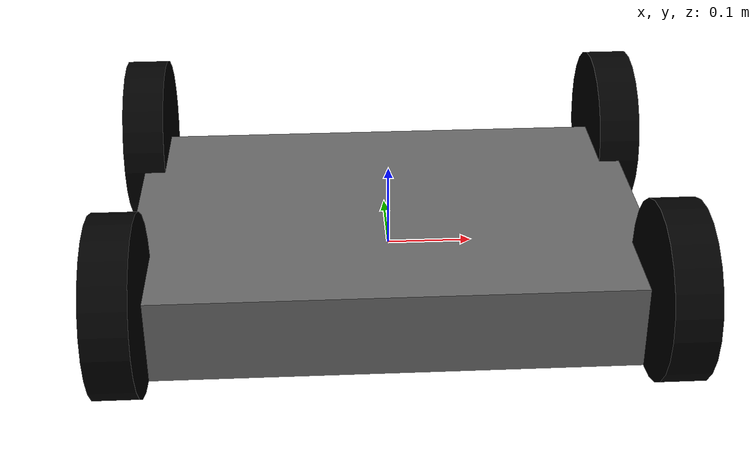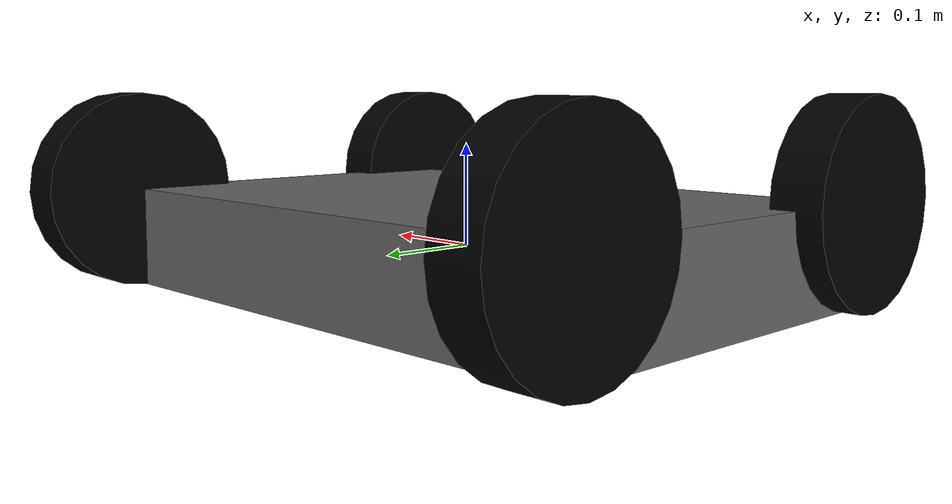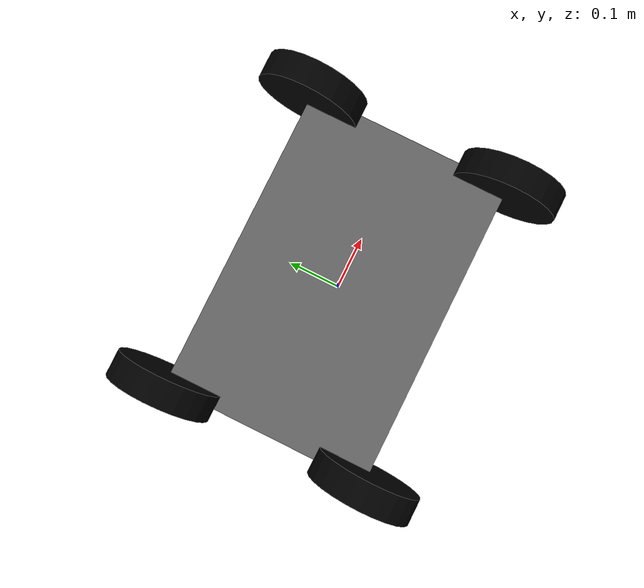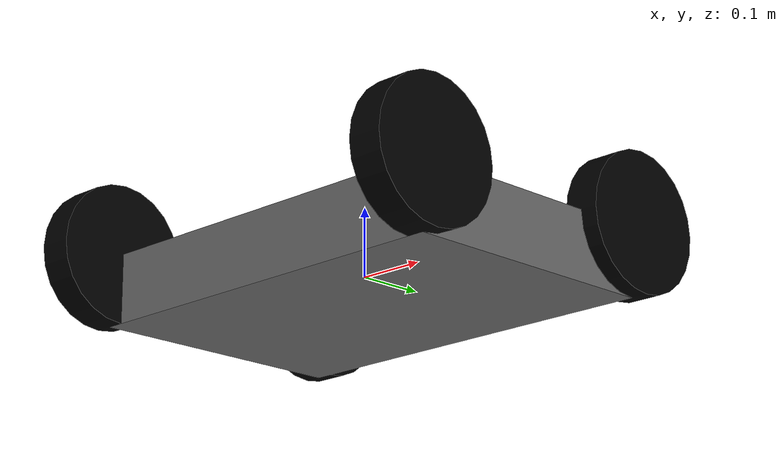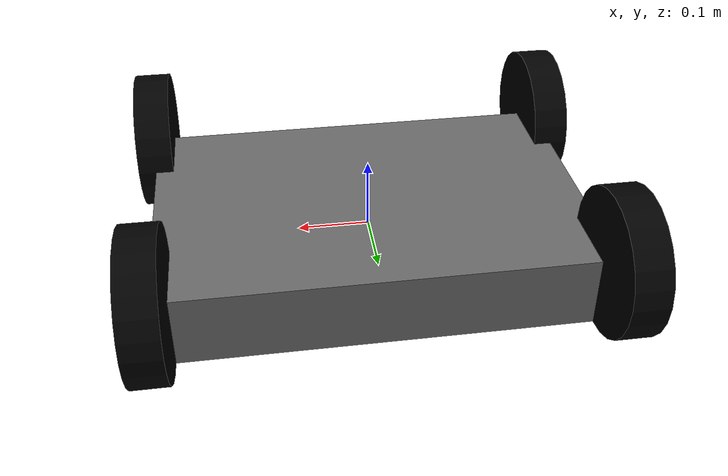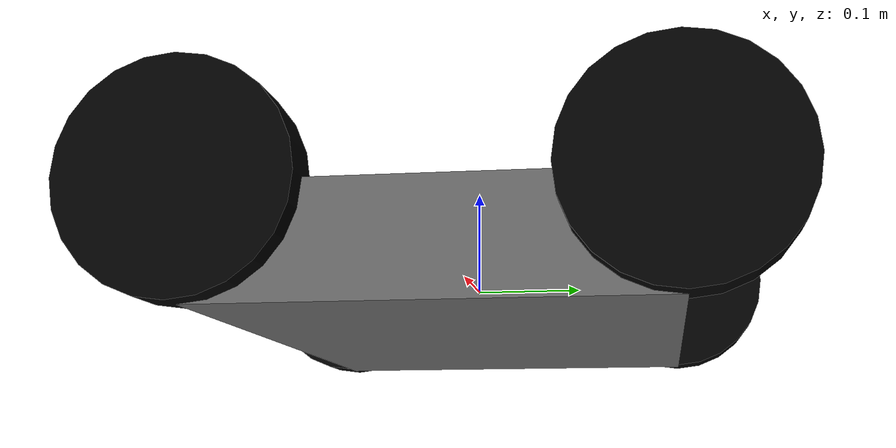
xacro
<?xml version="1.0"?>
<robot name="titan_v1" xmlns:xacro="http://www.ros.org/wiki/xacro">

  <!--   GLOBAL PROPERTIES   -->

  <!-- Base geometry -->
  <xacro:property name="wheel_radius"      value="0.1"/>   <!-- 10 cm -->
  <xacro:property name="wheel_width"       value="0.05"/>  <!-- 5 cm -->
  <xacro:property name="wheel_sep_width"   value="0.4"/>   <!-- left-right distance -->
  <xacro:property name="wheel_sep_length"  value="0.6"/>   <!-- front-rear distance -->
  <xacro:property name="body_height"       value="0.1"/>   <!-- height of base box -->
  <xacro:property name="body_mass"         value="15"/>

  <!-- Convenience: where wheel centers sit relative to base_link -->
  <!-- base_link origin is at the center of the box -->
  <!-- base bottom is at -body_height/2. We want wheel center slightly below base. -->
  <xacro:property name="wheel_center_z" value="${-body_height/2 + wheel_radius}"/>

  <!--      BASE LINK        -->

  <!-- base_link at box center -->
  <link name="base_link">
    <visual>
      <origin xyz="0 0 0" rpy="0 0 0"/>
      <geometry>
        <box size="${wheel_sep_length} ${wheel_sep_width} ${body_height}"/>
      </geometry>
      <material name="gray">
        <color rgba="0.4 0.4 0.4 1.0"/>
      </material>
    </visual>

    <collision>
      <origin xyz="0 0 0" rpy="0 0 0"/>
      <geometry>
        <box size="${wheel_sep_length} ${wheel_sep_width} ${body_height}"/>
      </geometry>
    </collision>

    <inertial>
      <origin xyz="0 0 0" rpy="0 0 0"/>
      <mass value="${body_mass}"/>
      <inertia ixx="0.3" iyy="0.3" izz="0.3" ixy="0" ixz="0" iyz="0"/>
    </inertial>
  </link>

  <!--    WHEEL MACRO        -->

  <xacro:macro name="wheel" params="name x y">
    <!-- Wheel Link -->
    <link name="${name}_link">
      <visual>
        <!-- Rotate cylinder so it looks like a wheel.
             Cylinder axis is Z by default; we rotate about Y so it lays sideways. -->
        <origin xyz="0 0 0" rpy="0 1.5708 0"/>
        <geometry>
          <cylinder radius="${wheel_radius}" length="${wheel_width}"/>
        </geometry>
        <material name="black">
          <color rgba="0 0 0 1"/>
        </material>
      </visual>

      <collision>
        <origin xyz="0 0 0" rpy="0 1.5708 0"/>
        <geometry>
          <cylinder radius="${wheel_radius}" length="${wheel_width}"/>
        </geometry>
      </collision>

      <inertial>
        <origin xyz="0 0 0" rpy="0 0 0"/>
        <mass value="1.0"/>
        <inertia ixx="0.01" iyy="0.01" izz="0.01" ixy="0" ixz="0" iyz="0"/>
      </inertial>
    </link>

    <!-- Wheel Joint -->
    <joint name="${name}_joint" type="continuous">
      <parent link="base_link"/>
      <child link="${name}_link"/>

      <!-- Wheel center position relative to base_link center -->
      <origin xyz="${x} ${y} ${wheel_center_z}" rpy="0 0 0"/>

      <!-- Physical rotation axis (matches diff-drive plugin expectation) -->
      <axis xyz="0 1 0"/>

      <limit effort="50" velocity="50"/>
      <dynamics damping="0.0" friction="0.0"/>
    </joint>
  </xacro:macro>

  <!--   WHEEL INSTANCES     -->

  <xacro:wheel name="front_left"
               x="${ wheel_sep_length/2}"
               y="${ wheel_sep_width/2}"/>

  <xacro:wheel name="rear_left"
               x="${-wheel_sep_length/2}"
               y="${ wheel_sep_width/2}"/>

  <xacro:wheel name="front_right"
               x="${ wheel_sep_length/2}"
               y="${-wheel_sep_width/2}"/>

  <xacro:wheel name="rear_right"
               x="${-wheel_sep_length/2}"
               y="${-wheel_sep_width/2}"/>

  <!--     GAZEBO PLUGINS    -->

  <!-- Friction for the base -->
  <gazebo reference="base_link">
    <mu1>1.0</mu1>
    <mu2>1.0</mu2>
  </gazebo>

  <!-- Differential drive plugin for GZ (4-wheel diff drive) -->
  <gazebo>
    <plugin filename="gz-sim-diff-drive-system" name="gz::sim::systems::DiffDrive">
      <!-- Left wheels -->
      <left_joint>front_left_joint</left_joint>
      <left_joint>rear_left_joint</left_joint>

      <!-- Right wheels -->
      <right_joint>front_right_joint</right_joint>
      <right_joint>rear_right_joint</right_joint>

      <!-- Geometry -->
      <wheel_separation>${wheel_sep_width}</wheel_separation>
      <wheel_radius>${wheel_radius}</wheel_radius>

      <!-- Limits -->
      <max_linear_acceleration>5.0</max_linear_acceleration>
      <max_angular_acceleration>10.0</max_angular_acceleration>

      <!-- ROS/GZ topics (bridged externally) -->
      <topic>cmd_vel</topic>
      <odom_topic>odom</odom_topic>

      <!-- Frames (for GZ side; ROS uses bridges) -->
      <frame_id>odom</frame_id>
      <child_frame_id>base_link</child_frame_id>
    </plugin>

    <!-- Joint state publisher system (publishes /joint_states via bridge) -->
    <plugin filename="gz-sim-joint-state-publisher-system" name="gz::sim::systems::JointStatePublisher">
      <topic>joint_states</topic>
    </plugin>
  </gazebo>

</robot>
